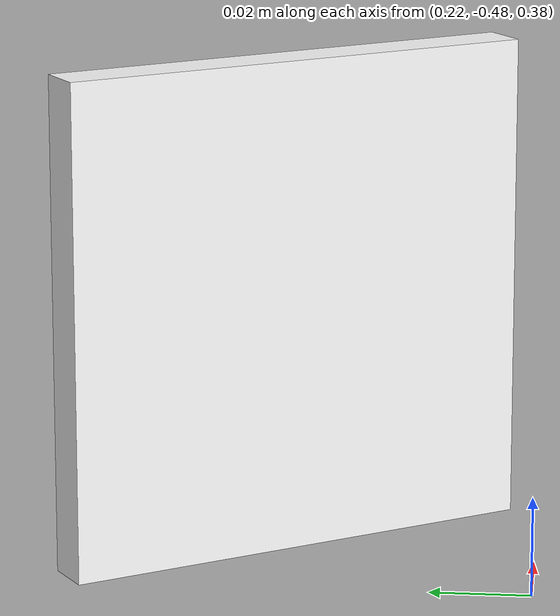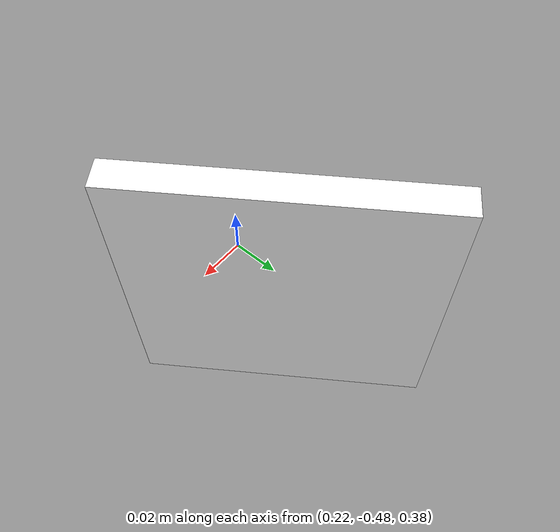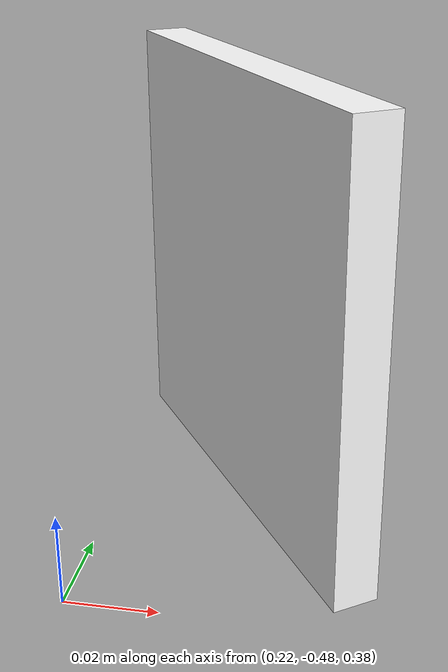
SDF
<?xml version="1.0" encoding="UTF-8"?>
<sdf version='1.9'>
  <model name='aruco_tag'>
    <static>true</static>
    <pose>0.25 -0.43 0.43 2.54 1.57 3.14</pose>
    <link name='base'>
      <visual name='base_visual'>
        <geometry>
          <box>
            <size>0.1 0.1 0.01</size>
          </box>
        </geometry>
        <material>
          <diffuse>1 1 1 1</diffuse>
          <specular>0.4 0.4 0.4 1</specular>
          <pbr>
            <metal>
              <albedo_map>aruco-20.png</albedo_map>
            </metal>
          </pbr>
        </material>
      </visual>
    </link>
  </model>
</sdf>
